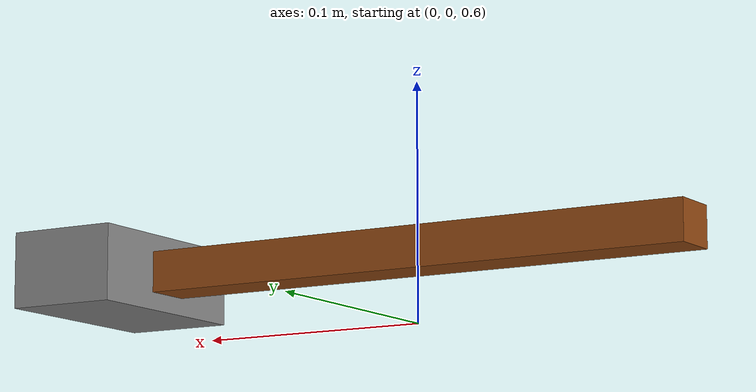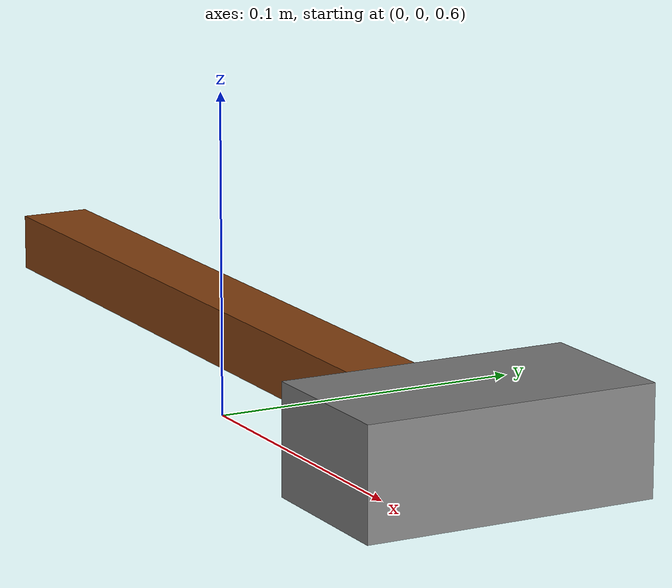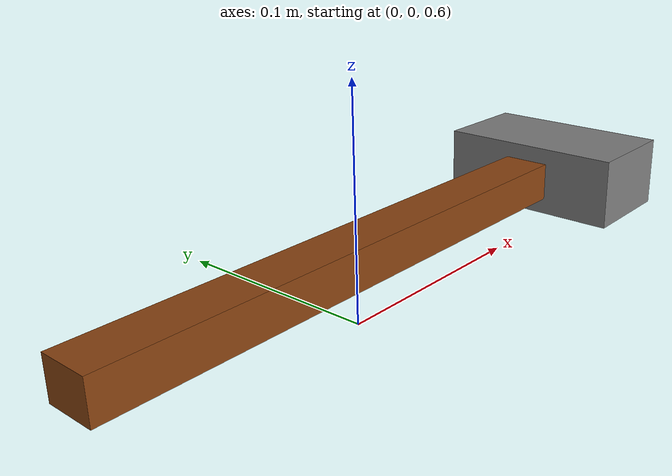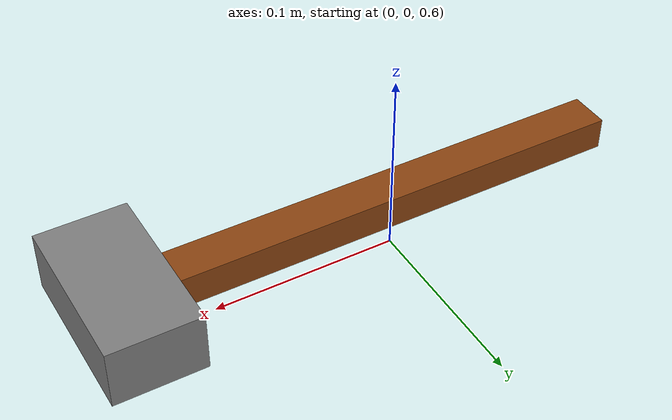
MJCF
<mujoco model="simtoolreal_hammer_single">
  <worldbody>
    <body name="object" pos="0 0 0.63">
      <freejoint name="object_joint"/>
      <inertial pos="0.11001550408820636 0 0" mass="0.15216298934657949"
        diaginertia="8.5061808519731788e-05 0.00084775546773497451 0.00091099004743392298"/>
      <geom name="object_handle" type="box" size="0.12315237346157157 0.010841399649950489 0.008712215355709603"
        friction="0.5 0.005 0.0001" rgba="0.55 0.27 0.07 1.0"/>
      <geom name="object_head" type="box" size="0.023963234280394902 0.043763372822044212 0.016190552325726554"
        pos="0.14711560774196647 0 0" friction="0.5 0.005 0.0001" rgba="0.5 0.5 0.5 1.0"/>
    </body>
  </worldbody>
</mujoco>
